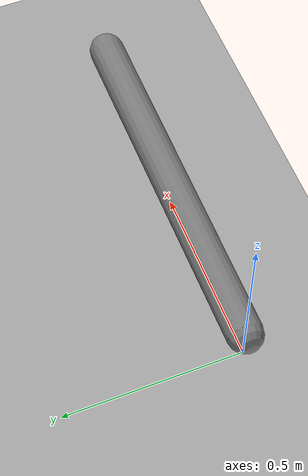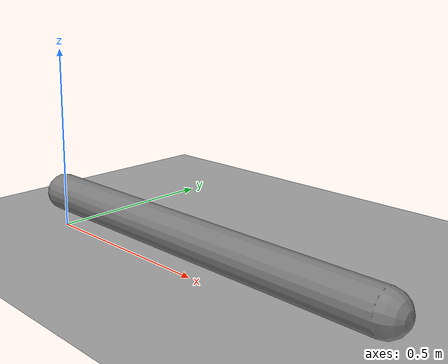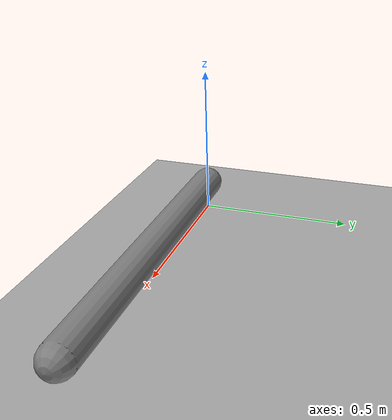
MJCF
<mujoco model="test">
  <compiler angle="degree" inertiafromgeom="true"/>
  <option timestep="0.01" integrator="implicitfast" cone="elliptic" jacobian="sparse" solver="Newton">
    <flag gravity="enable"/>
  </option>
  <size njmax="5000" nconmax="5000" nstack="5000000"/>
  <visual>
    <map stiffness="100" fogstart="10" fogend="15" zfar="40" shadowscale="0.5"/>
    <scale forcewidth="0.10000000000000001" contactwidth="0.074999999999999997" contactheight="0.025000000000000001" framelength="0.59999999999999998" framewidth="0.059999999999999998"/>
  </visual>
  <default>
    <default class="/"/>
  </default>
  <asset>
    <texture name="texplane" type="2d" builtin="checker" mark="cross" width="512" height="512"/>
    <material name="matplane" class="/" texture="texplane" texuniform="true"/>
  </asset>
  <worldbody>
    <geom name="world" class="/" type="plane" condim="1" size="0 0 1" material="matplane"/>
    <light name="//unnamed_light_0" class="/" directional="true" pos="0 0 4" dir="0 0 -1" diffuse="0.59999999999999998 0.59999999999999998 0.59999999999999998" specular="0.20000000000000001 0.20000000000000001 0.20000000000000001"/>
    <camera name="fixedcam" class="/" pos="-1.357 2.722 2.4470000000000001" xyaxes="-0.88200000000000001 -0.47199999999999998 0 0.23799999999999999 -0.44600000000000001 0.86299999999999999"/>
    <body name="pendulum" pos="0 0 0.10000000000000001" euler="0 90 0">
      <geom name="//unnamed_geom_1" class="/" type="capsule" size="0.050000000000000003 0.5" fromto="0 0 0 0 0 1"/>
      <inertial pos="0 0 0.5" mass="1"/>
      <joint name="joint" class="/" pos="0 0 0" axis="1 0 0" springdamper="0.5 0.20000000000000001"/>
    </body>
  </worldbody>
  <actuator>
    <position name="velocity_servo" class="/" joint="joint" kp="50000" kv="500"/>
  </actuator>
</mujoco>
